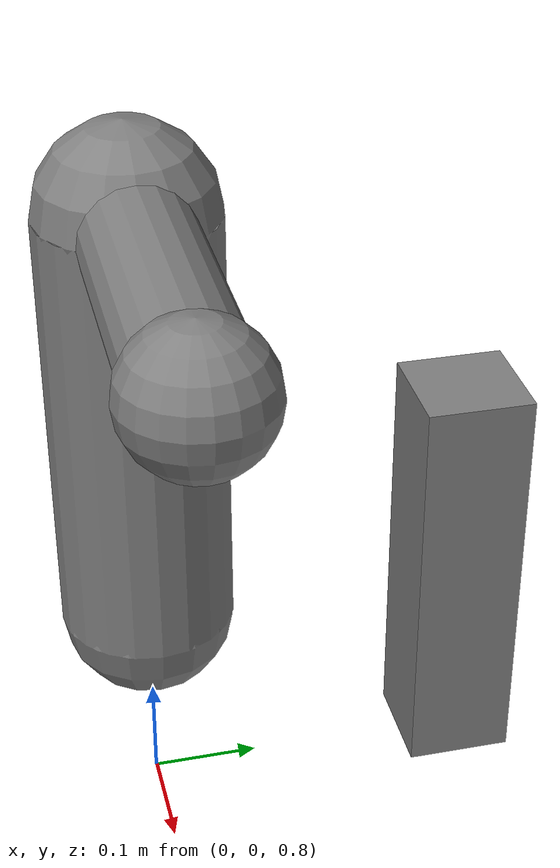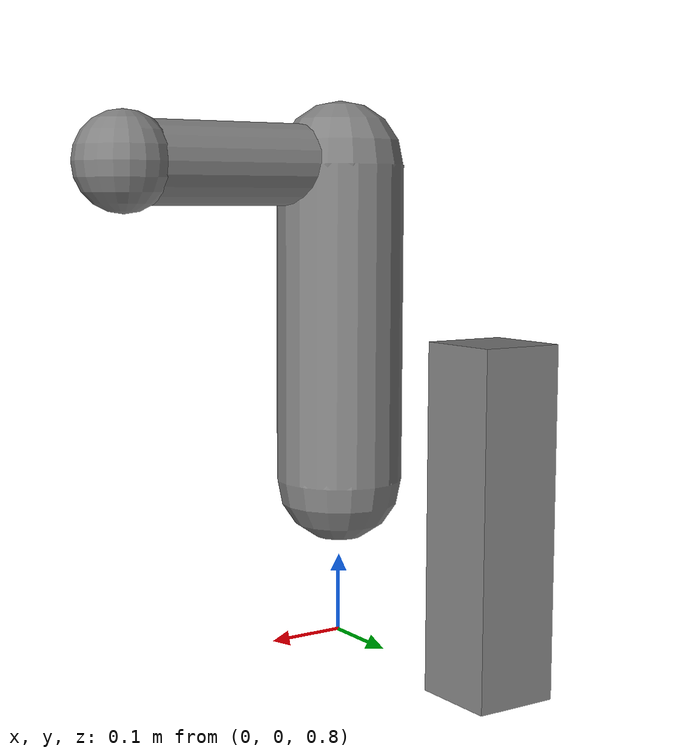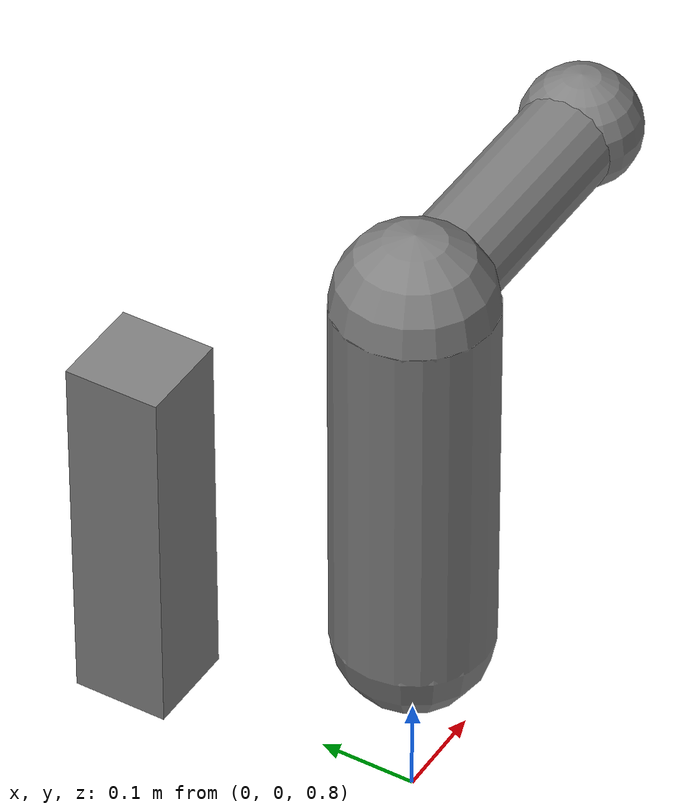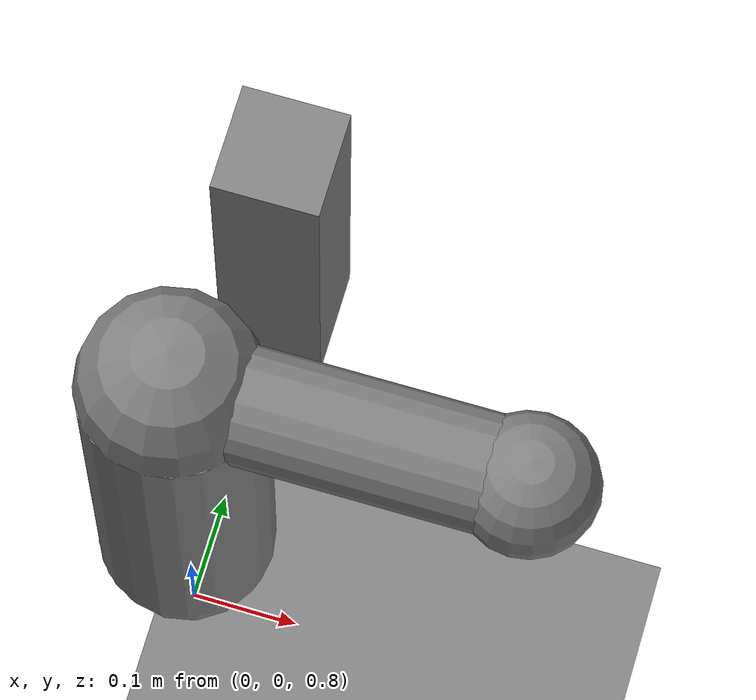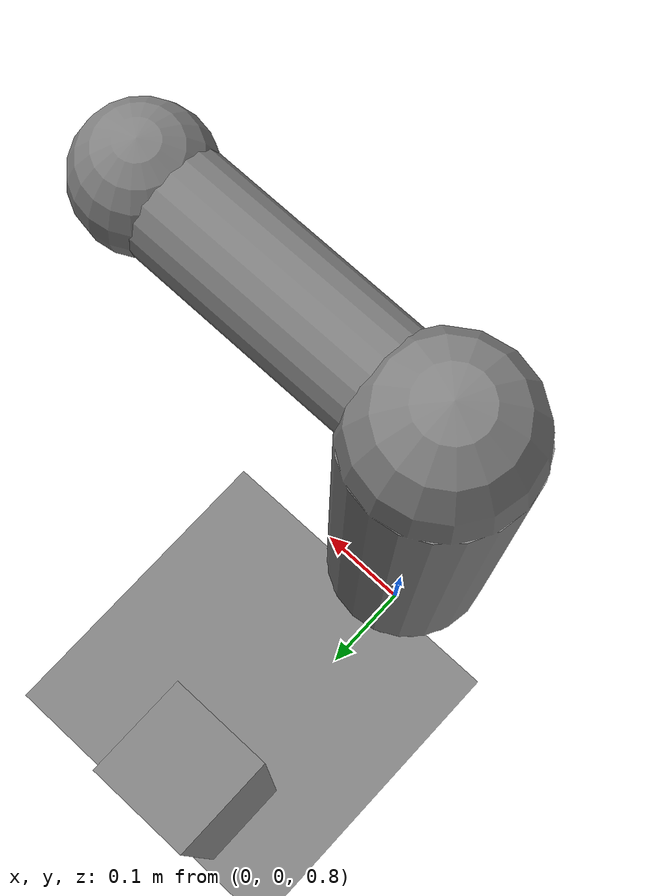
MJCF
<mujoco model="structural_edit_zoo">
  <compiler angle="degree"/>
  <worldbody>
    <geom name="floor" type="plane" size="5 5 .1"/>
    <body name="trunk" pos="0 0 1">
      <freejoint name="root"/>
      <geom name="trunk_geom" type="capsule" fromto="0 0 0 0 0 .4" size=".08"/>
      <site name="anchor" pos="0 0 .4"/>
      <body name="arm" pos="0 0 .4">
        <joint name="shoulder" type="hinge" axis="0 1 0" limited="true" range="-90 90"/>
        <geom name="arm_geom" type="capsule" fromto="0 0 0 .3 0 0" size=".05"/>
        <site name="tip" pos=".3 0 0"/>
        <body name="hand" pos=".3 0 0">
          <joint name="wrist" type="hinge" axis="0 0 1"/>
          <geom name="hand_geom" type="sphere" size=".06"/>
        </body>
      </body>
      <body name="post" pos="0 .3 0">
        <geom name="post_geom" type="box" size=".05 .05 .2"/>
      </body>
    </body>
  </worldbody>
  <tendon>
    <spatial name="cable" width=".004">
      <site site="anchor"/>
      <site site="tip"/>
    </spatial>
  </tendon>
  <equality>
    <weld name="w" body1="hand" body2="post"/>
  </equality>
  <contact>
    <pair geom1="arm_geom" geom2="post_geom"/>
    <exclude body1="arm" body2="post"/>
  </contact>
  <actuator>
    <motor name="shoulder_m" joint="shoulder" gear="10"/>
    <motor name="wrist_m" joint="wrist" gear="5"/>
    <motor name="cable_m" tendon="cable" gear="1"/>
    <motor name="keep_me" joint="root" gear="1"/>
  </actuator>
  <sensor>
    <framepos name="tip_pos" objtype="site" objname="tip"/>
    <framepos name="anchor_pos" objtype="site" objname="anchor"/>
  </sensor>
  <keyframe>
    <key name="home" qpos="0 0 1 1 0 0 0 0 0"/>
  </keyframe>
</mujoco>
